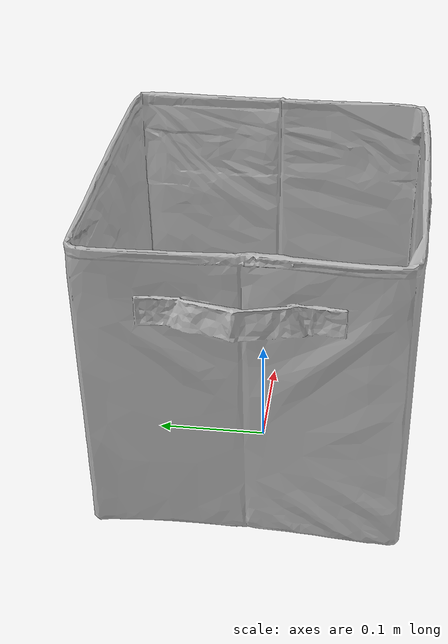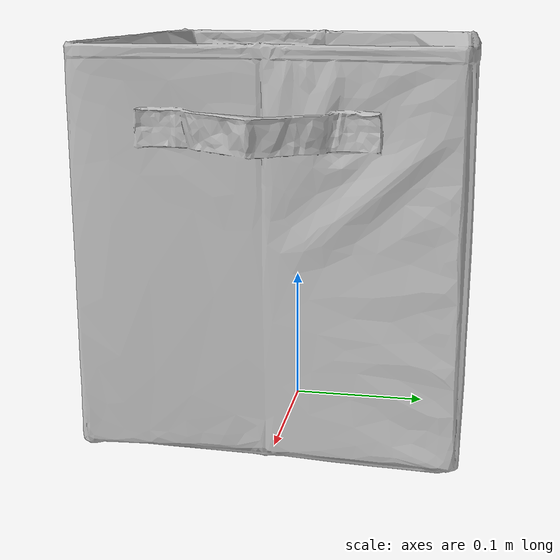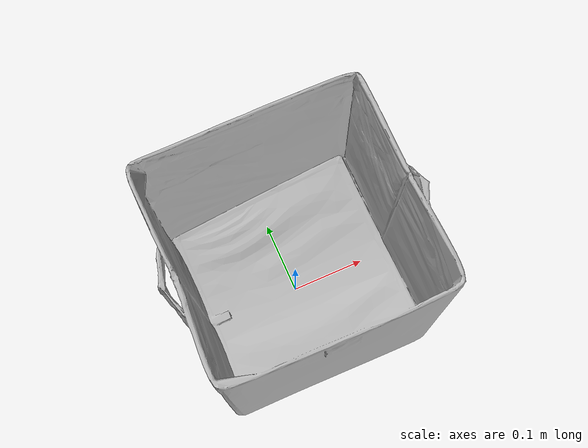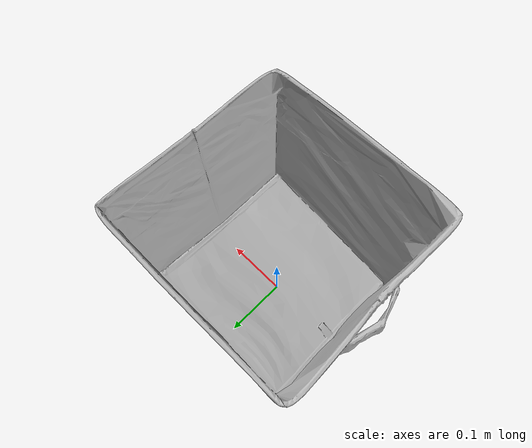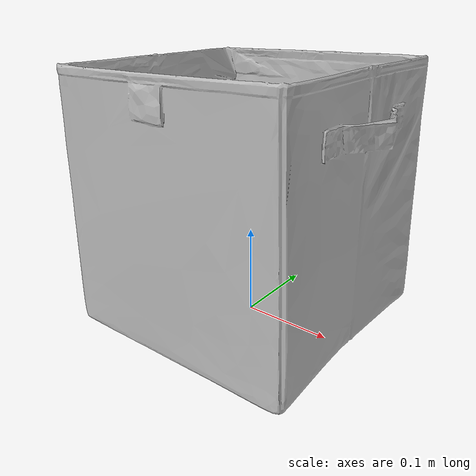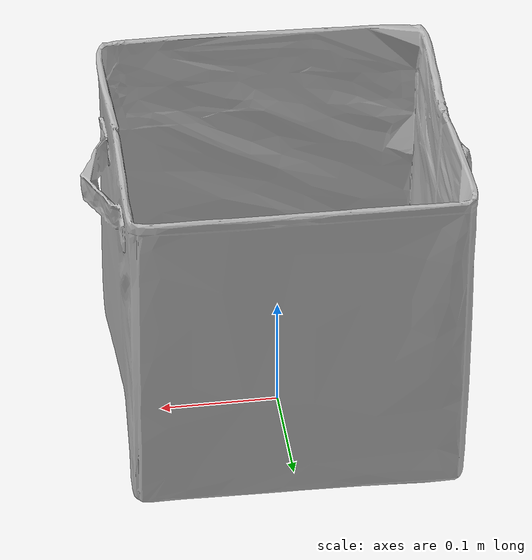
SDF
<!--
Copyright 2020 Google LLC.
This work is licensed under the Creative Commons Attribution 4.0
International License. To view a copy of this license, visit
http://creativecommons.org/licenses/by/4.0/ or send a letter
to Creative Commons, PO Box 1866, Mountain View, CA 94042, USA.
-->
<?xml version="1.0" ?>
<sdf version="1.6">
  <model name="Closetmaid_Premium_Fabric_Cube_Red">
    <link name="link_0">
      <visual name="visual">
        <geometry>
          <mesh>
            <uri>meshes/model.obj</uri>
          </mesh>
        </geometry>
      </visual>
      <collision name="collision_0">
        <geometry>
          <mesh>
            <uri>meshes/model.obj</uri>
          </mesh>
        </geometry>
      </collision>
    </link>
  </model>
</sdf>
